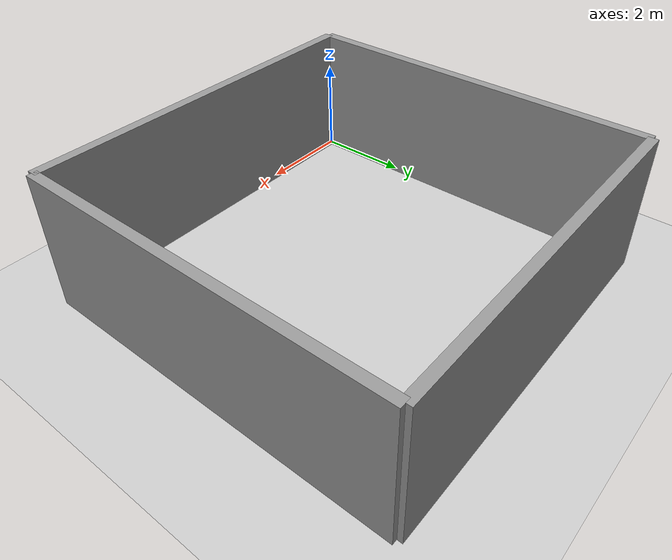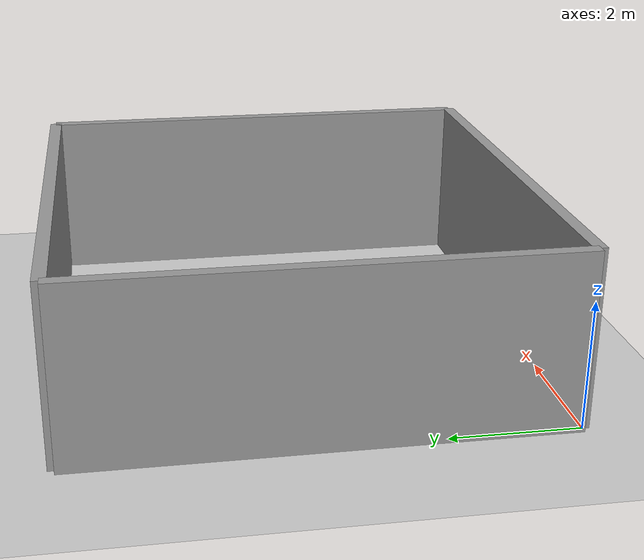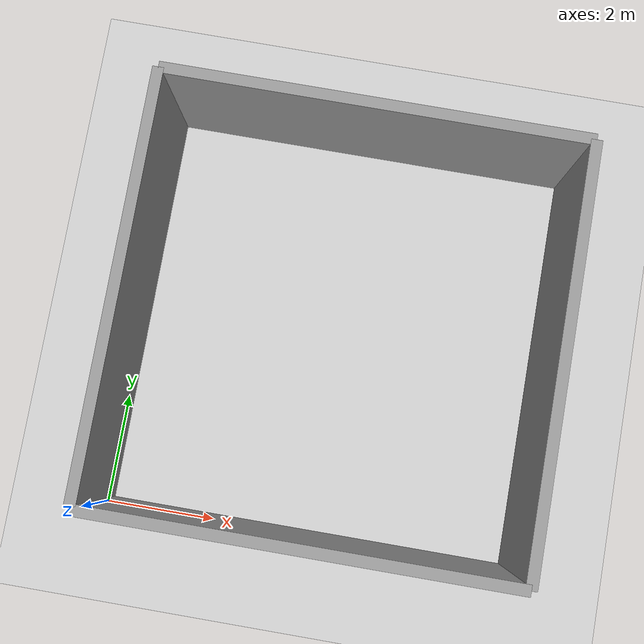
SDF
<sdf version="1.4">
 <world name="default">
  <include><uri>model://ground_plane</uri></include>
  <include><uri>model://sun</uri></include>
  <include><uri>model://grey_wall</uri><pose>3.75 0 0 0 0 0</pose></include>
  <include><uri>model://grey_wall</uri><pose>3.75 7.5 0 0 0 0</pose></include>
  <include><uri>model://grey_wall</uri><pose>3.75 0 0 0 0 0</pose></include>
  <include><uri>model://grey_wall</uri><pose>0 3.75 0 0 0 1.5708</pose></include>
  <include><uri>model://grey_wall</uri><pose>7.5 3.75 0 0 0 1.5708</pose></include>
 </world>
</sdf>

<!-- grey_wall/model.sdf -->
<sdf version="1.5">
  <model name="grey_wall">
    <static>true</static>
    <link name="link">
      <pose>0 0 1.4 0 0 0</pose>
      <collision name="collision">
        <geometry>
          <box>
            <size>7.5 0.2 2.8</size>
          </box>
        </geometry>
      </collision>
      <visual name="visual">
        <cast_shadows>false</cast_shadows>
        <geometry>
          <box>
            <size>7.5 0.2 2.8</size>
          </box>
        </geometry>
        <material>
          <script>
            <uri>model://../model_source/models/grey_wall/materials/scripts</uri>
            <uri>model://../model_source/models/grey_wall/materials/textures</uri>
            <name>vrc/grey_wall</name>
          </script>
        </material>
      </visual>
    </link>
  </model>
</sdf>
